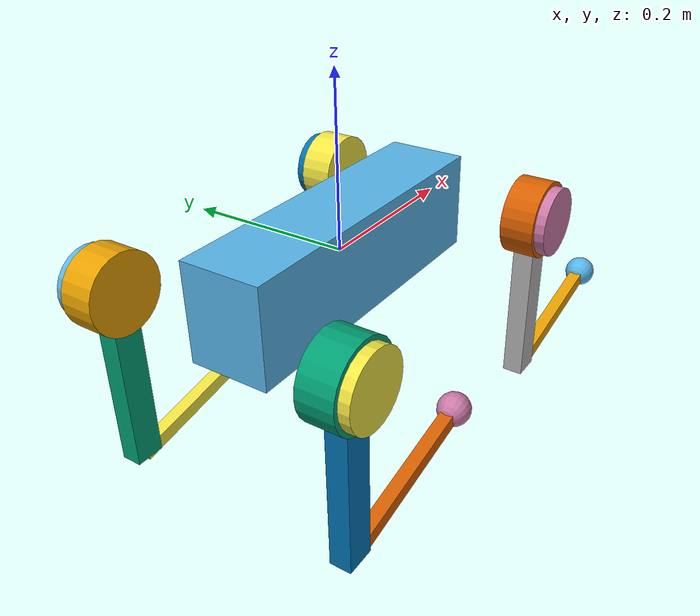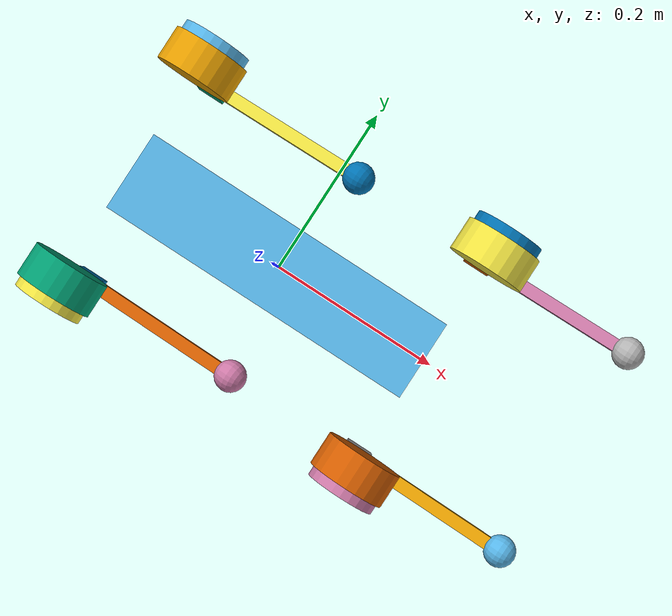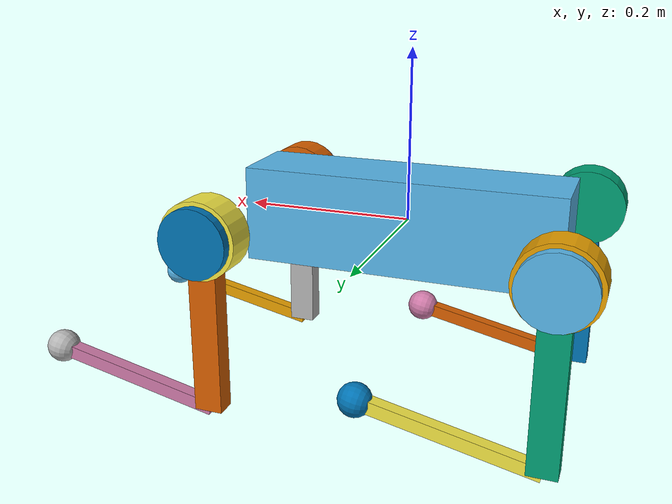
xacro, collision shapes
<?xml version="1.0"?>

<robot name="go2" xmlns:xacro="http://www.ros.org/wiki/xacro">

    <xacro:arg name="DEBUG" default="false"/>

    <xacro:include filename="$(find go2_description)/xacro/const.xacro"/>
    <xacro:include filename="$(find go2_description)/xacro/materials.xacro"/>
    <xacro:include filename="$(find go2_description)/xacro/leg.xacro"/>
    <xacro:include filename="$(find go2_description)/xacro/gazebo.xacro"/>

    <!-- Rotor related joint and link is only for demonstrate location. -->
    <!-- Actually, the rotor will rotate and the joint is not fixed. Reduction ratio should be considered. -->

    <!-- Rollover Protection mode will add an additional stick on the top, use "true" or "false" to switch it. -->
    <xacro:property name="rolloverProtection" value="false"/>

    <!-- Debug mode will hung up the robot, use "true" or "false" to switch it. -->
    <xacro:if value="$(arg DEBUG)">
        <link name="world"/>
        <joint name="base_static_joint" type="fixed">
            <origin rpy="0 0 0" xyz="0 0 0"/>
            <parent link="world"/>
            <child link="body"/>
        </joint>
    </xacro:if>

    <link name="body">
        <visual>
            <origin rpy="0 0 0" xyz="0 0 0"/>
            <geometry>
                <box size="0.001 0.001 0.001"/>
            </geometry>
        </visual>
    </link>

    <joint name="floating_base" type="fixed">
        <origin rpy="0 0 0" xyz="0 0 0"/>
        <parent link="body"/>
        <child link="trunk"/>
    </joint>

    <link name="trunk">
        <visual name="body_visual">
            <origin rpy="0 0 0" xyz="0 0 0"/>
            <geometry>
                <mesh filename="package://go2_description/meshes/trunk.dae" scale="1 1 1"/>
            </geometry>
        </visual>
        <collision name="body_collision">
            <origin rpy="0 0 0" xyz="0 0 0"/>
            <geometry>
                <box size="${trunk_length} ${trunk_width} ${trunk_height}"/>
            </geometry>
        </collision>
        <inertial>
            <origin rpy="0 0 0" xyz="${trunk_com_x} ${trunk_com_y} ${trunk_com_z}"/>
            <mass value="${trunk_mass}"/>
            <inertia
                ixx="${trunk_ixx}" ixy="${trunk_ixy}" ixz="${trunk_ixz}"
                iyy="${trunk_iyy}" iyz="${trunk_iyz}"
                izz="${trunk_izz}"/>
        </inertial>
    </link>

    <xacro:if value="${(rolloverProtection == 'true')}">
        <joint name="stick_joint" type="fixed">
            <parent link="trunk"/>
            <child link="stick_link"/>
            <origin rpy="0 0 0" xyz="${0.18} 0 ${stick_length/2.0+0.08}"/>
        </joint>

        <link name="stick_link">
            <visual>
                <geometry>
                    <cylinder length="${stick_length}" radius="${stick_radius}"/>
                </geometry>
                <origin rpy="0 0 0" xyz="0 0 0"/>
                <material name="white"/>
            </visual>
            <collision>
                <geometry>
                    <cylinder length="${stick_length}" radius="${stick_radius}"/>
                </geometry>
                <origin rpy="0 0 0" xyz="0 0 0"/>
            </collision>
            <inertial>
                <mass value="${stick_mass}"/>
                <inertia
                    ixx="${stick_mass / 2.0 * (stick_radius*stick_radius)}" ixy="0.0" ixz="0.0"
                    iyy="${stick_mass / 12.0 * (3*stick_radius*stick_radius + stick_length*stick_length)}" iyz="0.0"
                    izz="${stick_mass / 12.0 * (3*stick_radius*stick_radius + stick_length*stick_length)}"/>
            </inertial>
        </link>
    </xacro:if>

    <joint name="imu_joint" type="fixed">
        <parent link="trunk"/>
        <child link="imu_link"/>
        <origin rpy="0 0 0" xyz="0 0 0"/>
    </joint>

    <link name="imu_link">
        <inertial>
            <mass value="0.001"/>
            <origin rpy="0 0 0" xyz="0 0 0"/>
            <inertia ixx="0.0001" ixy="0" ixz="0" iyy="0.0001" iyz="0" izz="0.0001"/>
        </inertial>
        <visual>
            <origin rpy="0 0 0" xyz="0 0 0"/>
            <geometry>
                <box size="0.001 0.001 0.001"/>
            </geometry>
        </visual>
        <collision>
            <origin rpy="0 0 0" xyz="0 0 0"/>
            <geometry>
                <box size=".001 .001 .001"/>
            </geometry>
        </collision>
    </link>

    <!--FL-->
    <xacro:leg suffix="0" mirror="1" mirror_dae="True" front_hind="1" front_hind_dae="True"
               hipJointName="0" kneeJointName="1" abductionJointName="8">
        <origin rpy="0 0 0" xyz="${leg_offset_x} ${leg_offset_y} 0"/>
    </xacro:leg>

    <!--RL-->
    <xacro:leg suffix="1" mirror="1" mirror_dae="True" front_hind="-1" front_hind_dae="False"
               hipJointName="2" kneeJointName="3" abductionJointName="9">
        <origin rpy="0 0 0" xyz="${-leg_offset_x} ${leg_offset_y} 0"/>
    </xacro:leg>

    <!--FR-->
    <xacro:leg suffix="2" mirror="-1" mirror_dae="False" front_hind="1" front_hind_dae="True"
               hipJointName="4" kneeJointName="5" abductionJointName="10">
        <origin rpy="0 0 0" xyz="${leg_offset_x} ${-leg_offset_y} 0"/>
    </xacro:leg>

    <!--RR-->
    <xacro:leg suffix="3" mirror="-1" mirror_dae="False" front_hind="-1" front_hind_dae="False"
               hipJointName="6" kneeJointName="7" abductionJointName="11">
        <origin rpy="0 0 0" xyz="${-leg_offset_x} ${-leg_offset_y} 0"/>
    </xacro:leg>

</robot>

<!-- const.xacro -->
<robot xmlns:xacro="http://www.ros.org/wiki/xacro">

    <!-- Constants for robot dimensions -->
    <xacro:property name="PI" value="3.1415926535897931"/>
    <xacro:property name="stick_mass" value="0.00001"/>

    <!-- simplified collision value -->
    <xacro:property name="trunk_width" value="0.0935"/>
    <xacro:property name="trunk_length" value="0.3762"/>
    <xacro:property name="trunk_height" value="0.114"/>
    <xacro:property name="hip_radius" value="0.046"/>
    <xacro:property name="hip_length" value="0.04"/>
    <xacro:property name="thigh_shoulder_radius" value="0.041"/>
    <xacro:property name="thigh_shoulder_length" value="0.032"/>
    <xacro:property name="thigh_width" value="0.0245"/>
    <xacro:property name="thigh_height" value="0.034"/>
    <xacro:property name="calf_width" value="0.016"/>
    <xacro:property name="calf_height" value="0.016"/>
    <xacro:property name="foot_radius" value="0.02"/>
    <xacro:property name="stick_radius" value="0.01"/>
    <xacro:property name="stick_length" value="0.2"/>
    <xacro:property name="toe_friction" value="0.2"/>
    <xacro:property name="toe_lateral_friction" value="0.2"/>
    <xacro:property name="toe_stiffness" value="30000.0"/>
    <xacro:property name="toe_damping" value="1000.0"/>

    <!-- kinematic value -->
    <xacro:property name="thigh_offset" value="0.0955"/>
    <xacro:property name="thigh_length" value="0.213"/>
    <xacro:property name="calf_length" value="0.213"/>

    <!-- leg offset from trunk center value -->
    <xacro:property name="leg_offset_x" value="0.1934"/>
    <xacro:property name="leg_offset_y" value="0.0465"/>
    <xacro:property name="hip_offset" value="0.0955"/>

    <!-- offset of link locations (left front) -->
    <xacro:property name="hip_offset_x" value="0.1934"/>
    <xacro:property name="hip_offset_y" value="0.0465"/>
    <xacro:property name="hip_offset_z" value="0.0"/>

    <xacro:property name="thigh_offset_x" value="0"/>
    <xacro:property name="thigh_offset_y" value="0.0955"/>
    <xacro:property name="thigh_offset_z" value="0.0"/>

    <xacro:property name="calf_offset_x" value="0.0"/>
    <xacro:property name="calf_offset_y" value="0.0"/>
    <xacro:property name="calf_offset_z" value="-0.213"/>

    <!-- joint limits -->
    <xacro:property name="damping" value="0.0"/>
    <xacro:property name="friction" value="0.0"/>
    <xacro:property name="hip_position_max" value="1.0472"/>
    <xacro:property name="hip_position_min" value="-1.0472"/>
    <xacro:property name="hip_velocity_max" value="30.1"/>
    <xacro:property name="hip_torque_max" value="23.7"/>
    <xacro:property name="thigh_position_max" value="3.4907"/>
    <xacro:property name="thigh_position_min" value="-1.5708"/>
    <xacro:property name="thigh_velocity_max" value="30.1"/>
    <xacro:property name="thigh_torque_max" value="23.7"/>
    <xacro:property name="calf_position_max" value="-0.83776"/>
    <xacro:property name="calf_position_min" value="-2.7227"/>
    <xacro:property name="calf_velocity_max" value="20.06"/>
    <xacro:property name="calf_torque_max" value="35.55"/>

    <!-- dynamics inertial value -->
    <!-- trunk -->
    <xacro:property name="trunk_mass" value="6.921"/>
    <xacro:property name="trunk_com_x" value="0.021112"/>
    <xacro:property name="trunk_com_y" value="0.00"/>
    <xacro:property name="trunk_com_z" value="-0.005366"/>
    <xacro:property name="trunk_ixx" value="0.02448"/>
    <xacro:property name="trunk_ixy" value="0.00012166"/>
    <xacro:property name="trunk_ixz" value="0.0014849"/>
    <xacro:property name="trunk_iyy" value="0.098077"/>
    <xacro:property name="trunk_iyz" value="-3.12E-05"/>
    <xacro:property name="trunk_izz" value="0.107"/>

    <!-- hip (left front) -->
    <xacro:property name="hip_mass" value="0.678"/>
    <xacro:property name="hip_com_x" value="-0.0054"/>
    <xacro:property name="hip_com_y" value="0.00194"/>
    <xacro:property name="hip_com_z" value="-0.000105"/>
    <xacro:property name="hip_ixx" value="0.00048"/>
    <xacro:property name="hip_ixy" value="-3.01E-06"/>
    <xacro:property name="hip_ixz" value="1.11E-06"/>
    <xacro:property name="hip_iyy" value="0.000884"/>
    <xacro:property name="hip_iyz" value="-1.42E-06"/>
    <xacro:property name="hip_izz" value="0.000596"/>

    <!-- thigh -->
    <xacro:property name="thigh_mass" value="1.152"/>
    <xacro:property name="thigh_com_x" value="-0.00374"/>
    <xacro:property name="thigh_com_y" value="-0.0223"/>
    <xacro:property name="thigh_com_z" value="-0.0327"/>
    <xacro:property name="thigh_ixx" value="0.00584"/>
    <xacro:property name="thigh_ixy" value="8.72E-05"/>
    <xacro:property name="thigh_ixz" value="-0.000289"/>
    <xacro:property name="thigh_iyy" value="0.0058"/>
    <xacro:property name="thigh_iyz" value="0.000808"/>
    <xacro:property name="thigh_izz" value="0.00103"/>

    <!-- calf -->
    <xacro:property name="calf_mass" value="0.154"/>
    <xacro:property name="calf_com_x" value="0.00548"/>
    <xacro:property name="calf_com_y" value="-0.000975"/>
    <xacro:property name="calf_com_z" value="-0.115"/>
    <xacro:property name="calf_ixx" value="0.00108"/>
    <xacro:property name="calf_ixy" value="3.4E-07"/>
    <xacro:property name="calf_ixz" value="1.72E-05"/>
    <xacro:property name="calf_iyy" value="0.0011"/>
    <xacro:property name="calf_iyz" value="8.28E-06"/>
    <xacro:property name="calf_izz" value="3.29E-05"/>

    <!-- foot -->
    <xacro:property name="foot_mass" value="0.06"/>

</robot>

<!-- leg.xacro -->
<robot xmlns:xacro="http://www.ros.org/wiki/xacro">

    <xacro:include filename="$(find go2_description)/xacro/transmission.xacro"/>

    <xacro:macro name="leg" params="suffix mirror mirror_dae front_hind front_hind_dae
                                hipJointName kneeJointName abductionJointName *origin">

        <link name="hip${suffix}">
            <visual name="hip${suffix}_visual">
                <xacro:if value="${(mirror_dae == True) and (front_hind_dae == True)}">
                    <origin rpy="0 0 0" xyz="0 0 0"/>
                </xacro:if>
                <xacro:if value="${(mirror_dae == False) and (front_hind_dae == True)}">
                    <origin rpy="${PI} 0 0" xyz="0 0 0"/>
                </xacro:if>
                <xacro:if value="${(mirror_dae == True) and (front_hind_dae == False)}">
                    <origin rpy="0 ${PI} 0" xyz="0 0 0"/>
                </xacro:if>
                <xacro:if value="${(mirror_dae == False) and (front_hind_dae == False)}">
                    <origin rpy="${PI} ${PI} 0" xyz="0 0 0"/>
                </xacro:if>
                <geometry>
                    <mesh filename="package://go2_description/meshes/hip.dae" scale="1 1 1"/>
                </geometry>
            </visual>
            <collision>
                <origin rpy="${PI/2.0} 0 0" xyz="0 ${hip_offset*mirror} 0"/>
                <geometry>
                    <cylinder length="${hip_length}" radius="${hip_radius}"/>
                </geometry>
            </collision>
            <inertial>
                <origin rpy="0 0 0" xyz="${hip_com_x*front_hind} ${hip_com_y*mirror} ${hip_com_z}"/>
                <mass value="${hip_mass}"/>
                <inertia
                    ixx="${hip_ixx}" ixy="${hip_ixy*mirror*front_hind}" ixz="${hip_ixz*front_hind}"
                    iyy="${hip_iyy}" iyz="${hip_iyz*mirror}"
                    izz="${hip_izz}"/>
            </inertial>
        </link>

        <joint name="${abductionJointName}" type="revolute">
            <xacro:if value="${(mirror_dae == False) and (front_hind_dae == True)}">
                <origin rpy="0 0 0" xyz="${leg_offset_x} ${-leg_offset_y} 0"/>
            </xacro:if>
            <xacro:if value="${(mirror_dae == True) and (front_hind_dae == True)}">
                <origin rpy="0 0 0" xyz="${leg_offset_x} ${leg_offset_y} 0"/>
            </xacro:if>
            <xacro:if value="${(mirror_dae == False) and (front_hind_dae == False)}">
                <origin rpy="0 0 0" xyz="${-leg_offset_x} ${-leg_offset_y} 0"/>
            </xacro:if>
            <xacro:if value="${(mirror_dae == True) and (front_hind_dae == False)}">
                <origin rpy="0 0 0" xyz="${-leg_offset_x} ${leg_offset_y} 0"/>
            </xacro:if>
            <parent link="trunk"/>
            <child link="hip${suffix}"/>
            <axis xyz="1 0 0"/>
            <dynamics damping="${damping}" friction="${friction}"/>
            <xacro:if value="${(mirror_dae == True)}">
                <limit effort="${hip_torque_max}" velocity="${hip_velocity_max}" lower="${hip_position_min}" upper="${hip_position_max}"/>
            </xacro:if>
            <xacro:if value="${(mirror_dae == False)}">
                <limit effort="${hip_torque_max}" velocity="${hip_velocity_max}" lower="${-hip_position_max}" upper="${-hip_position_min}"/>
            </xacro:if>
        </joint>

        <!-- this link is only for collision -->
        <link name="thigh_shoulder${suffix}">
            <collision>
                <origin rpy="${PI/2.0} 0 0" xyz="0 0 0"/>
                <geometry>
                    <cylinder length="${thigh_shoulder_length}" radius="${thigh_shoulder_radius}"/>
                </geometry>
            </collision>
        </link>

        <joint name="hip${suffix}_fixed" type="fixed">
            <origin rpy="0 0 0" xyz="0 ${(thigh_shoulder_length/2.0+hip_offset)*mirror} 0"/>
            <parent link="hip${suffix}"/>
            <child link="thigh_shoulder${suffix}"/>
        </joint>

        <link name="upper${suffix}">
            <visual name="upper${suffix}_visual">
                <origin rpy="0 0 0" xyz="0 0 0"/>
                <geometry>
                    <xacro:if value="${mirror_dae == True}">
                        <mesh filename="package://go2_description/meshes/thigh.dae" scale="1 1 1"/>
                    </xacro:if>
                    <xacro:if value="${mirror_dae == False}">
                        <mesh filename="package://go2_description/meshes/thigh_mirror.dae" scale="1 1 1"/>
                    </xacro:if>
                </geometry>
            </visual>
            <collision name="upper${suffix}_collision">
                <origin rpy="0 ${PI/2.0} 0" xyz="0 0 ${-thigh_length/2.0}"/>
                <geometry>
                    <box size="${thigh_length} ${thigh_width} ${thigh_height}"/>
                </geometry>
            </collision>
            <inertial>
                <origin rpy="0 0 0" xyz="${thigh_com_x} ${thigh_com_y*mirror} ${thigh_com_z}"/>
                <mass value="${thigh_mass}"/>
                <inertia
                    ixx="${thigh_ixx}" ixy="${thigh_ixy*mirror}" ixz="${thigh_ixz}"
                    iyy="${thigh_iyy}" iyz="${thigh_iyz*mirror}"
                    izz="${thigh_izz}"/>
            </inertial>
        </link>

        <joint name="${hipJointName}" type="revolute">
            <origin rpy="0 0 0" xyz="0 ${thigh_offset*mirror} 0"/>
            <parent link="hip${suffix}"/>
            <child link="upper${suffix}"/>
            <axis xyz="0 1 0"/>
            <dynamics damping="${damping}" friction="${friction}"/>
            <limit effort="${thigh_torque_max}" velocity="${thigh_velocity_max}" lower="${thigh_position_min}" upper="${thigh_position_max}"/>
        </joint>

        <link name="lower${suffix}">
            <visual name="lower${suffix}_visual">
                <origin rpy="0 0 0" xyz="0 0 0"/>
                <geometry>
                    <mesh filename="package://go2_description/meshes/calf.dae" scale="1 1 1"/>
                </geometry>
            </visual>
            <collision name="lower${suffix}_collision">
                <origin rpy="0 ${PI/2.0} 0" xyz="0 0 ${-calf_length/2.0}"/>
                <geometry>
                    <box size="${calf_length} ${calf_width} ${calf_height}"/>
                </geometry>
            </collision>
            <inertial>
                <origin rpy="0 0 0" xyz="${calf_com_x} ${calf_com_y} ${calf_com_z}"/>
                <mass value="${calf_mass}"/>
                <inertia
                    ixx="${calf_ixx}" ixy="${calf_ixy}" ixz="${calf_ixz}"
                    iyy="${calf_iyy}" iyz="${calf_iyz}"
                    izz="${calf_izz}"/>
            </inertial>
        </link>

         <joint name="${kneeJointName}" type="revolute">
            <origin rpy="0 0 0" xyz="0 0 ${-thigh_length}"/>
            <parent link="upper${suffix}"/>
            <child link="lower${suffix}"/>
            <axis xyz="0 1 0"/>
            <dynamics damping="${damping}" friction="${friction}"/>
            <limit effort="${calf_torque_max}" velocity="${calf_velocity_max}" lower="${calf_position_min}" upper="${calf_position_max}"/>
        </joint>

        <link name="toe${suffix}">
            <visual name="toe${suffix}_visual">
                <origin rpy="0 0 0" xyz="0 0 0"/>
                <geometry>
                    <sphere radius="${foot_radius-0.01}"/>
                </geometry>
            </visual>
            <collision name="toe${suffix}_collision">
                <origin rpy="0 0 0" xyz="0 0 0"/>
                <geometry>
                    <sphere radius="${foot_radius}"/>
                </geometry>
                <surface>
                <bounce>
                    <restitution_coefficient>0</restitution_coefficient>
                    <threshold>1e+06</threshold>
                </bounce>
                <friction>
                    <ode>
                        <mu>${toe_friction}</mu>
                        <mu2>${toe_lateral_friction}</mu2>
                    </ode>
                    <bullet>
                        <rolling_friction>0.3</rolling_friction>
                        <friction2>50</friction2>
                    </bullet>
                </friction>
                <contact>
                    <ode>
                        <kp>${toe_stiffness}</kp>
                        <kd>${toe_damping}</kd>
                    </ode>
                    <bullet>
                        <kp>${toe_stiffness}</kp>
                        <kd>${toe_damping}</kd>
                        <split_impulse>1</split_impulse>
                        <split_impulse_penetration_threshold>-0.01</split_impulse_penetration_threshold>
                    </bullet>
                </contact>
            </surface>
            </collision>
            <inertial>
                <mass value="${foot_mass}"/>
                <inertia
                    ixx="${(2*foot_mass)/5.0*(foot_radius*foot_radius)}" ixy="0.0" ixz="0.0"
                    iyy="${(2*foot_mass)/5.0*(foot_radius*foot_radius)}" iyz="0.0"
                    izz="${(2*foot_mass)/5.0*(foot_radius*foot_radius)}"/>
            </inertial>
        </link>

        <joint name="jtoe${suffix}" type="fixed">0
            <origin rpy="0 0 0" xyz="0 0 ${-(calf_length)}"/>
            <parent link="lower${suffix}"/>
            <child link="toe${suffix}"/>
        </joint>

        <xacro:leg_transmission  hipJointName="${hipJointName}" kneeJointName="${kneeJointName}" abductionJointName="${abductionJointName}"/>
    </xacro:macro>
</robot>
